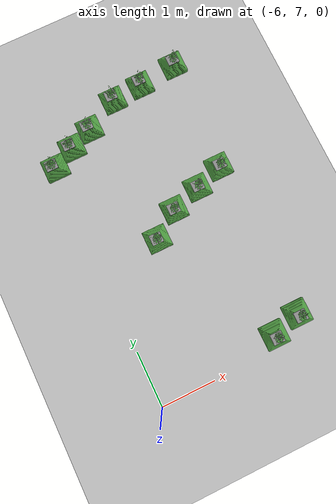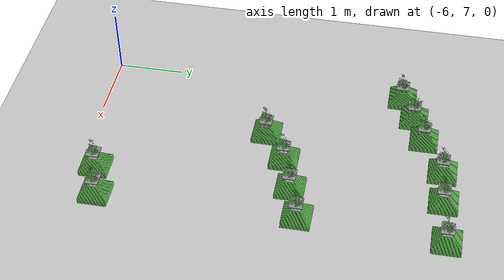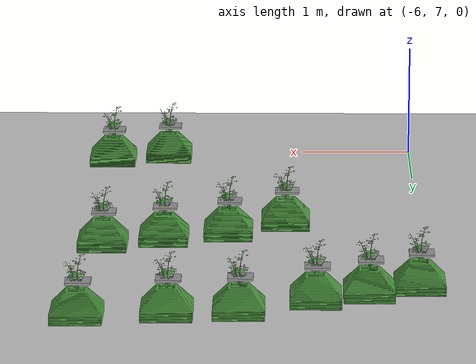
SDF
<sdf version="1.6">
 <world name="default">
  <model name="ground_plane">
   <static>1</static>
   <link name="link">
    <collision name="collision">
     <geometry><plane><normal>0 0 1</normal><size>100 100</size></plane></geometry>
     <surface><friction><ode><mu>100</mu><mu2>50</mu2></ode></friction></surface>
    </collision>
    <visual name="visual">
     <cast_shadows>0</cast_shadows>
     <geometry><plane><normal>0 0 1</normal><size>100 100</size></plane></geometry>
     <material>
      <script><uri>file://media/materials/scripts/gazebo.material</uri><name>Gazebo/Grey</name></script>
     </material>
    </visual>
   </link>
  </model>
  <model name="plant_63">
   <link name="link_0">
    <inertial>
     <mass>1</mass>
     <inertia>
      <ixx>0.0134051</ixx>
      <ixy>0</ixy>
      <ixz>0</ixz>
      <iyy>0.0134051</iyy>
      <iyz>0</iyz>
      <izz>0.0254102</izz>
     </inertia>
    </inertial>
    <gravity>0</gravity>
    <visual name="visual">
     <geometry><mesh><uri>model://square_pot/pot.stl</uri><scale>0.033 0.033 0.02</scale></mesh></geometry>
     <material>
      <lighting>1</lighting>
      <script><uri>file://media/materials/scripts/gazebo.material</uri><name>Gazebo/Grass</name></script>
      <ambient>0.3 0.3 0.3 1</ambient>
      <diffuse>0.7 0.7 0.7 1</diffuse>
      <specular>0.01 0.01 0.01 1</specular>
      <emissive>0 0 0 1</emissive>
      <shader type="vertex"><normal_map>__default__</normal_map></shader>
     </material>
    </visual>
    <collision name="collision">
     <pose>0 0 0.25 0 -0 0</pose>
     <geometry><box><size>0.4 0.4 0.4</size></box></geometry>
     <surface>
      <friction>
       <ode><mu>1</mu><mu2>1</mu2><fdir1>0 0 0</fdir1><slip1>0</slip1><slip2>0</slip2></ode>
       <torsional>
        <coefficient>1</coefficient>
        <patch_radius>0</patch_radius>
        <surface_radius>0</surface_radius>
        <use_patch_radius>1</use_patch_radius>
        <ode><slip>0</slip></ode>
       </torsional>
      </friction>
      <bounce><restitution_coefficient>0</restitution_coefficient><threshold>1e+06</threshold></bounce>
      <contact>
       <collide_without_contact>1</collide_without_contact>
       <collide_without_contact_bitmask>1</collide_without_contact_bitmask>
       <collide_bitmask>1</collide_bitmask>
       <ode>
        <soft_cfm>0</soft_cfm>
        <soft_erp>0.2</soft_erp>
        <kp>1e+13</kp>
        <kd>1</kd>
        <max_vel>0.01</max_vel>
        <min_depth>0</min_depth>
       </ode>
       <bullet>
        <split_impulse>1</split_impulse>
        <split_impulse_penetration_threshold>-0.01</split_impulse_penetration_threshold>
        <soft_cfm>0</soft_cfm>
        <soft_erp>0.2</soft_erp>
        <kp>1e+13</kp>
        <kd>1</kd>
       </bullet>
      </contact>
     </surface>
    </collision>
   </link>
   <link name="link_0_0">
    <pose>-0.011441 -0.008338 0.308474 0 -0 0</pose>
    <inertial>
     <mass>0.000736153</mass>
     <inertia>
      <ixx>2.11165e-06</ixx>
      <ixy>0</ixy>
      <ixz>0</ixz>
      <iyy>2.64382e-06</iyy>
      <iyz>0</iyz>
      <izz>4.70976e-06</izz>
     </inertia>
    </inertial>
    <visual name="visual">
     <geometry><box><size>0.206678 0.18452 0.019291</size></box></geometry>
     <material>
      <lighting>1</lighting>
      <script><uri>file://media/materials/scripts/gazebo.material</uri><name>Gazebo/Grey</name></script>
      <ambient>0.3 0.3 0.3 1</ambient>
      <diffuse>0.7 0.7 0.7 1</diffuse>
      <specular>0.01 0.01 0.01 1</specular>
      <emissive>0 0 0 1</emissive>
     </material>
    </visual>
    <collision name="collision">
     <geometry><box><size>0.206678 0.18452 0.019291</size></box></geometry>
     <surface>
      <friction>
       <ode><mu>1</mu><mu2>1</mu2><fdir1>0 0 0</fdir1><slip1>0</slip1><slip2>0</slip2></ode>
       <torsional>
        <coefficient>1</coefficient>
        <patch_radius>0</patch_radius>
        <surface_radius>0</surface_radius>
        <use_patch_radius>1</use_patch_radius>
        <ode><slip>0</slip></ode>
       </torsional>
      </friction>
      <bounce><restitution_coefficient>0</restitution_coefficient><threshold>1e+06</threshold></bounce>
      <contact>
       <collide_without_contact>0</collide_without_contact>
       <collide_without_contact_bitmask>1</collide_without_contact_bitmask>
       <collide_bitmask>1</collide_bitmask>
       <ode>
        <soft_cfm>0</soft_cfm>
        <soft_erp>0.2</soft_erp>
        <kp>1e+13</kp>
        <kd>1</kd>
        <max_vel>0.01</max_vel>
        <min_depth>0</min_depth>
       </ode>
       <bullet>
        <split_impulse>1</split_impulse>
        <split_impulse_penetration_threshold>-0.01</split_impulse_penetration_threshold>
        <soft_cfm>0</soft_cfm>
        <soft_erp>0.2</soft_erp>
        <kp>1e+13</kp>
        <kd>1</kd>
       </bullet>
      </contact>
     </surface>
    </collision>
   </link>
   <static>1</static>
   <pose>-5.95411 11.5689 0 0 -0 0</pose>
  </model>
  <model name="plant_64">
   <link name="link_0">
    <inertial>
     <mass>1</mass>
     <inertia>
      <ixx>0.0134051</ixx>
      <ixy>0</ixy>
      <ixz>0</ixz>
      <iyy>0.0134051</iyy>
      <iyz>0</iyz>
      <izz>0.0254102</izz>
     </inertia>
    </inertial>
    <gravity>0</gravity>
    <visual name="visual">
     <geometry><mesh><uri>model://square_pot/pot.stl</uri><scale>0.033 0.033 0.02</scale></mesh></geometry>
     <material>
      <lighting>1</lighting>
      <script><uri>file://media/materials/scripts/gazebo.material</uri><name>Gazebo/Grass</name></script>
      <ambient>0.3 0.3 0.3 1</ambient>
      <diffuse>0.7 0.7 0.7 1</diffuse>
      <specular>0.01 0.01 0.01 1</specular>
      <emissive>0 0 0 1</emissive>
      <shader type="vertex"><normal_map>__default__</normal_map></shader>
     </material>
    </visual>
    <collision name="collision">
     <pose>0 0 0.25 0 -0 0</pose>
     <geometry><box><size>0.4 0.4 0.4</size></box></geometry>
     <surface>
      <friction>
       <ode><mu>1</mu><mu2>1</mu2><fdir1>0 0 0</fdir1><slip1>0</slip1><slip2>0</slip2></ode>
       <torsional>
        <coefficient>1</coefficient>
        <patch_radius>0</patch_radius>
        <surface_radius>0</surface_radius>
        <use_patch_radius>1</use_patch_radius>
        <ode><slip>0</slip></ode>
       </torsional>
      </friction>
      <bounce><restitution_coefficient>0</restitution_coefficient><threshold>1e+06</threshold></bounce>
      <contact>
       <collide_without_contact>1</collide_without_contact>
       <collide_without_contact_bitmask>1</collide_without_contact_bitmask>
       <collide_bitmask>1</collide_bitmask>
       <ode>
        <soft_cfm>0</soft_cfm>
        <soft_erp>0.2</soft_erp>
        <kp>1e+13</kp>
        <kd>1</kd>
        <max_vel>0.01</max_vel>
        <min_depth>0</min_depth>
       </ode>
       <bullet>
        <split_impulse>1</split_impulse>
        <split_impulse_penetration_threshold>-0.01</split_impulse_penetration_threshold>
        <soft_cfm>0</soft_cfm>
        <soft_erp>0.2</soft_erp>
        <kp>1e+13</kp>
        <kd>1</kd>
       </bullet>
      </contact>
     </surface>
    </collision>
   </link>
   <link name="link_0_0">
    <pose>-0.011441 -0.008338 0.308474 0 -0 0</pose>
    <inertial>
     <mass>0.000736153</mass>
     <inertia>
      <ixx>2.11165e-06</ixx>
      <ixy>0</ixy>
      <ixz>0</ixz>
      <iyy>2.64382e-06</iyy>
      <iyz>0</iyz>
      <izz>4.70976e-06</izz>
     </inertia>
    </inertial>
    <visual name="visual">
     <geometry><box><size>0.206678 0.18452 0.019291</size></box></geometry>
     <material>
      <lighting>1</lighting>
      <script><uri>file://media/materials/scripts/gazebo.material</uri><name>Gazebo/Grey</name></script>
      <ambient>0.3 0.3 0.3 1</ambient>
      <diffuse>0.7 0.7 0.7 1</diffuse>
      <specular>0.01 0.01 0.01 1</specular>
      <emissive>0 0 0 1</emissive>
     </material>
    </visual>
    <collision name="collision">
     <geometry><box><size>0.206678 0.18452 0.019291</size></box></geometry>
     <surface>
      <friction>
       <ode><mu>1</mu><mu2>1</mu2><fdir1>0 0 0</fdir1><slip1>0</slip1><slip2>0</slip2></ode>
       <torsional>
        <coefficient>1</coefficient>
        <patch_radius>0</patch_radius>
        <surface_radius>0</surface_radius>
        <use_patch_radius>1</use_patch_radius>
        <ode><slip>0</slip></ode>
       </torsional>
      </friction>
      <bounce><restitution_coefficient>0</restitution_coefficient><threshold>1e+06</threshold></bounce>
      <contact>
       <collide_without_contact>0</collide_without_contact>
       <collide_without_contact_bitmask>1</collide_without_contact_bitmask>
       <collide_bitmask>1</collide_bitmask>
       <ode>
        <soft_cfm>0</soft_cfm>
        <soft_erp>0.2</soft_erp>
        <kp>1e+13</kp>
        <kd>1</kd>
        <max_vel>0.01</max_vel>
        <min_depth>0</min_depth>
       </ode>
       <bullet>
        <split_impulse>1</split_impulse>
        <split_impulse_penetration_threshold>-0.01</split_impulse_penetration_threshold>
        <soft_cfm>0</soft_cfm>
        <soft_erp>0.2</soft_erp>
        <kp>1e+13</kp>
        <kd>1</kd>
       </bullet>
      </contact>
     </surface>
    </collision>
   </link>
   <static>1</static>
   <pose>-5.53643 11.7807 0 0 -0 0</pose>
  </model>
  <model name="plant_65">
   <link name="link_0">
    <inertial>
     <mass>1</mass>
     <inertia>
      <ixx>0.0134051</ixx>
      <ixy>0</ixy>
      <ixz>0</ixz>
      <iyy>0.0134051</iyy>
      <iyz>0</iyz>
      <izz>0.0254102</izz>
     </inertia>
    </inertial>
    <gravity>0</gravity>
    <visual name="visual">
     <geometry><mesh><uri>model://square_pot/pot.stl</uri><scale>0.033 0.033 0.02</scale></mesh></geometry>
     <material>
      <lighting>1</lighting>
      <script><uri>file://media/materials/scripts/gazebo.material</uri><name>Gazebo/Grass</name></script>
      <ambient>0.3 0.3 0.3 1</ambient>
      <diffuse>0.7 0.7 0.7 1</diffuse>
      <specular>0.01 0.01 0.01 1</specular>
      <emissive>0 0 0 1</emissive>
      <shader type="vertex"><normal_map>__default__</normal_map></shader>
     </material>
    </visual>
    <collision name="collision">
     <pose>0 0 0.25 0 -0 0</pose>
     <geometry><box><size>0.4 0.4 0.4</size></box></geometry>
     <surface>
      <friction>
       <ode><mu>1</mu><mu2>1</mu2><fdir1>0 0 0</fdir1><slip1>0</slip1><slip2>0</slip2></ode>
       <torsional>
        <coefficient>1</coefficient>
        <patch_radius>0</patch_radius>
        <surface_radius>0</surface_radius>
        <use_patch_radius>1</use_patch_radius>
        <ode><slip>0</slip></ode>
       </torsional>
      </friction>
      <bounce><restitution_coefficient>0</restitution_coefficient><threshold>1e+06</threshold></bounce>
      <contact>
       <collide_without_contact>1</collide_without_contact>
       <collide_without_contact_bitmask>1</collide_without_contact_bitmask>
       <collide_bitmask>1</collide_bitmask>
       <ode>
        <soft_cfm>0</soft_cfm>
        <soft_erp>0.2</soft_erp>
        <kp>1e+13</kp>
        <kd>1</kd>
        <max_vel>0.01</max_vel>
        <min_depth>0</min_depth>
       </ode>
       <bullet>
        <split_impulse>1</split_impulse>
        <split_impulse_penetration_threshold>-0.01</split_impulse_penetration_threshold>
        <soft_cfm>0</soft_cfm>
        <soft_erp>0.2</soft_erp>
        <kp>1e+13</kp>
        <kd>1</kd>
       </bullet>
      </contact>
     </surface>
    </collision>
   </link>
   <link name="link_0_0">
    <pose>-0.011441 -0.008338 0.308474 0 -0 0</pose>
    <inertial>
     <mass>0.000736153</mass>
     <inertia>
      <ixx>2.11165e-06</ixx>
      <ixy>0</ixy>
      <ixz>0</ixz>
      <iyy>2.64382e-06</iyy>
      <iyz>0</iyz>
      <izz>4.70976e-06</izz>
     </inertia>
    </inertial>
    <visual name="visual">
     <geometry><box><size>0.206678 0.18452 0.019291</size></box></geometry>
     <material>
      <lighting>1</lighting>
      <script><uri>file://media/materials/scripts/gazebo.material</uri><name>Gazebo/Grey</name></script>
      <ambient>0.3 0.3 0.3 1</ambient>
      <diffuse>0.7 0.7 0.7 1</diffuse>
      <specular>0.01 0.01 0.01 1</specular>
      <emissive>0 0 0 1</emissive>
     </material>
    </visual>
    <collision name="collision">
     <geometry><box><size>0.206678 0.18452 0.019291</size></box></geometry>
     <surface>
      <friction>
       <ode><mu>1</mu><mu2>1</mu2><fdir1>0 0 0</fdir1><slip1>0</slip1><slip2>0</slip2></ode>
       <torsional>
        <coefficient>1</coefficient>
        <patch_radius>0</patch_radius>
        <surface_radius>0</surface_radius>
        <use_patch_radius>1</use_patch_radius>
        <ode><slip>0</slip></ode>
       </torsional>
      </friction>
      <bounce><restitution_coefficient>0</restitution_coefficient><threshold>1e+06</threshold></bounce>
      <contact>
       <collide_without_contact>0</collide_without_contact>
       <collide_without_contact_bitmask>1</collide_without_contact_bitmask>
       <collide_bitmask>1</collide_bitmask>
       <ode>
        <soft_cfm>0</soft_cfm>
        <soft_erp>0.2</soft_erp>
        <kp>1e+13</kp>
        <kd>1</kd>
        <max_vel>0.01</max_vel>
        <min_depth>0</min_depth>
       </ode>
       <bullet>
        <split_impulse>1</split_impulse>
        <split_impulse_penetration_threshold>-0.01</split_impulse_penetration_threshold>
        <soft_cfm>0</soft_cfm>
        <soft_erp>0.2</soft_erp>
        <kp>1e+13</kp>
        <kd>1</kd>
       </bullet>
      </contact>
     </surface>
    </collision>
   </link>
   <static>1</static>
   <pose>-5.10313 11.9639 0 0 -0 0</pose>
  </model>
  <model name="plant_66">
   <link name="link_0">
    <inertial>
     <mass>1</mass>
     <inertia>
      <ixx>0.0134051</ixx>
      <ixy>0</ixy>
      <ixz>0</ixz>
      <iyy>0.0134051</iyy>
      <iyz>0</iyz>
      <izz>0.0254102</izz>
     </inertia>
    </inertial>
    <gravity>0</gravity>
    <visual name="visual">
     <geometry><mesh><uri>model://square_pot/pot.stl</uri><scale>0.033 0.033 0.02</scale></mesh></geometry>
     <material>
      <lighting>1</lighting>
      <script><uri>file://media/materials/scripts/gazebo.material</uri><name>Gazebo/Grass</name></script>
      <ambient>0.3 0.3 0.3 1</ambient>
      <diffuse>0.7 0.7 0.7 1</diffuse>
      <specular>0.01 0.01 0.01 1</specular>
      <emissive>0 0 0 1</emissive>
      <shader type="vertex"><normal_map>__default__</normal_map></shader>
     </material>
    </visual>
    <collision name="collision">
     <pose>0 0 0.25 0 -0 0</pose>
     <geometry><box><size>0.4 0.4 0.4</size></box></geometry>
     <surface>
      <friction>
       <ode><mu>1</mu><mu2>1</mu2><fdir1>0 0 0</fdir1><slip1>0</slip1><slip2>0</slip2></ode>
       <torsional>
        <coefficient>1</coefficient>
        <patch_radius>0</patch_radius>
        <surface_radius>0</surface_radius>
        <use_patch_radius>1</use_patch_radius>
        <ode><slip>0</slip></ode>
       </torsional>
      </friction>
      <bounce><restitution_coefficient>0</restitution_coefficient><threshold>1e+06</threshold></bounce>
      <contact>
       <collide_without_contact>1</collide_without_contact>
       <collide_without_contact_bitmask>1</collide_without_contact_bitmask>
       <collide_bitmask>1</collide_bitmask>
       <ode>
        <soft_cfm>0</soft_cfm>
        <soft_erp>0.2</soft_erp>
        <kp>1e+13</kp>
        <kd>1</kd>
        <max_vel>0.01</max_vel>
        <min_depth>0</min_depth>
       </ode>
       <bullet>
        <split_impulse>1</split_impulse>
        <split_impulse_penetration_threshold>-0.01</split_impulse_penetration_threshold>
        <soft_cfm>0</soft_cfm>
        <soft_erp>0.2</soft_erp>
        <kp>1e+13</kp>
        <kd>1</kd>
       </bullet>
      </contact>
     </surface>
    </collision>
   </link>
   <link name="link_0_0">
    <pose>-0.011441 -0.008338 0.308474 0 -0 0</pose>
    <inertial>
     <mass>0.000736153</mass>
     <inertia>
      <ixx>2.11165e-06</ixx>
      <ixy>0</ixy>
      <ixz>0</ixz>
      <iyy>2.64382e-06</iyy>
      <iyz>0</iyz>
      <izz>4.70976e-06</izz>
     </inertia>
    </inertial>
    <visual name="visual">
     <geometry><box><size>0.206678 0.18452 0.019291</size></box></geometry>
     <material>
      <lighting>1</lighting>
      <script><uri>file://media/materials/scripts/gazebo.material</uri><name>Gazebo/Grey</name></script>
      <ambient>0.3 0.3 0.3 1</ambient>
      <diffuse>0.7 0.7 0.7 1</diffuse>
      <specular>0.01 0.01 0.01 1</specular>
      <emissive>0 0 0 1</emissive>
     </material>
    </visual>
    <collision name="collision">
     <geometry><box><size>0.206678 0.18452 0.019291</size></box></geometry>
     <surface>
      <friction>
       <ode><mu>1</mu><mu2>1</mu2><fdir1>0 0 0</fdir1><slip1>0</slip1><slip2>0</slip2></ode>
       <torsional>
        <coefficient>1</coefficient>
        <patch_radius>0</patch_radius>
        <surface_radius>0</surface_radius>
        <use_patch_radius>1</use_patch_radius>
        <ode><slip>0</slip></ode>
       </torsional>
      </friction>
      <bounce><restitution_coefficient>0</restitution_coefficient><threshold>1e+06</threshold></bounce>
      <contact>
       <collide_without_contact>0</collide_without_contact>
       <collide_without_contact_bitmask>1</collide_without_contact_bitmask>
       <collide_bitmask>1</collide_bitmask>
       <ode>
        <soft_cfm>0</soft_cfm>
        <soft_erp>0.2</soft_erp>
        <kp>1e+13</kp>
        <kd>1</kd>
        <max_vel>0.01</max_vel>
        <min_depth>0</min_depth>
       </ode>
       <bullet>
        <split_impulse>1</split_impulse>
        <split_impulse_penetration_threshold>-0.01</split_impulse_penetration_threshold>
        <soft_cfm>0</soft_cfm>
        <soft_erp>0.2</soft_erp>
        <kp>1e+13</kp>
        <kd>1</kd>
       </bullet>
      </contact>
     </surface>
    </collision>
   </link>
   <static>1</static>
   <pose>-4.48695 12.2803 0 0 -0 0</pose>
  </model>
  <model name="plant_67">
   <link name="link_0">
    <inertial>
     <mass>1</mass>
     <inertia>
      <ixx>0.0134051</ixx>
      <ixy>0</ixy>
      <ixz>0</ixz>
      <iyy>0.0134051</iyy>
      <iyz>0</iyz>
      <izz>0.0254102</izz>
     </inertia>
    </inertial>
    <gravity>0</gravity>
    <visual name="visual">
     <geometry><mesh><uri>model://square_pot/pot.stl</uri><scale>0.033 0.033 0.02</scale></mesh></geometry>
     <material>
      <lighting>1</lighting>
      <script><uri>file://media/materials/scripts/gazebo.material</uri><name>Gazebo/Grass</name></script>
      <ambient>0.3 0.3 0.3 1</ambient>
      <diffuse>0.7 0.7 0.7 1</diffuse>
      <specular>0.01 0.01 0.01 1</specular>
      <emissive>0 0 0 1</emissive>
      <shader type="vertex"><normal_map>__default__</normal_map></shader>
     </material>
    </visual>
    <collision name="collision">
     <pose>0 0 0.25 0 -0 0</pose>
     <geometry><box><size>0.4 0.4 0.4</size></box></geometry>
     <surface>
      <friction>
       <ode><mu>1</mu><mu2>1</mu2><fdir1>0 0 0</fdir1><slip1>0</slip1><slip2>0</slip2></ode>
       <torsional>
        <coefficient>1</coefficient>
        <patch_radius>0</patch_radius>
        <surface_radius>0</surface_radius>
        <use_patch_radius>1</use_patch_radius>
        <ode><slip>0</slip></ode>
       </torsional>
      </friction>
      <bounce><restitution_coefficient>0</restitution_coefficient><threshold>1e+06</threshold></bounce>
      <contact>
       <collide_without_contact>1</collide_without_contact>
       <collide_without_contact_bitmask>1</collide_without_contact_bitmask>
       <collide_bitmask>1</collide_bitmask>
       <ode>
        <soft_cfm>0</soft_cfm>
        <soft_erp>0.2</soft_erp>
        <kp>1e+13</kp>
        <kd>1</kd>
        <max_vel>0.01</max_vel>
        <min_depth>0</min_depth>
       </ode>
       <bullet>
        <split_impulse>1</split_impulse>
        <split_impulse_penetration_threshold>-0.01</split_impulse_penetration_threshold>
        <soft_cfm>0</soft_cfm>
        <soft_erp>0.2</soft_erp>
        <kp>1e+13</kp>
        <kd>1</kd>
       </bullet>
      </contact>
     </surface>
    </collision>
   </link>
   <link name="link_0_0">
    <pose>-0.011441 -0.008338 0.308474 0 -0 0</pose>
    <inertial>
     <mass>0.000736153</mass>
     <inertia>
      <ixx>2.11165e-06</ixx>
      <ixy>0</ixy>
      <ixz>0</ixz>
      <iyy>2.64382e-06</iyy>
      <iyz>0</iyz>
      <izz>4.70976e-06</izz>
     </inertia>
    </inertial>
    <visual name="visual">
     <geometry><box><size>0.206678 0.18452 0.019291</size></box></geometry>
     <material>
      <lighting>1</lighting>
      <script><uri>file://media/materials/scripts/gazebo.material</uri><name>Gazebo/Grey</name></script>
      <ambient>0.3 0.3 0.3 1</ambient>
      <diffuse>0.7 0.7 0.7 1</diffuse>
      <specular>0.01 0.01 0.01 1</specular>
      <emissive>0 0 0 1</emissive>
     </material>
    </visual>
    <collision name="collision">
     <geometry><box><size>0.206678 0.18452 0.019291</size></box></geometry>
     <surface>
      <friction>
       <ode><mu>1</mu><mu2>1</mu2><fdir1>0 0 0</fdir1><slip1>0</slip1><slip2>0</slip2></ode>
       <torsional>
        <coefficient>1</coefficient>
        <patch_radius>0</patch_radius>
        <surface_radius>0</surface_radius>
        <use_patch_radius>1</use_patch_radius>
        <ode><slip>0</slip></ode>
       </torsional>
      </friction>
      <bounce><restitution_coefficient>0</restitution_coefficient><threshold>1e+06</threshold></bounce>
      <contact>
       <collide_without_contact>0</collide_without_contact>
       <collide_without_contact_bitmask>1</collide_without_contact_bitmask>
       <collide_bitmask>1</collide_bitmask>
       <ode>
        <soft_cfm>0</soft_cfm>
        <soft_erp>0.2</soft_erp>
        <kp>1e+13</kp>
        <kd>1</kd>
        <max_vel>0.01</max_vel>
        <min_depth>0</min_depth>
       </ode>
       <bullet>
        <split_impulse>1</split_impulse>
        <split_impulse_penetration_threshold>-0.01</split_impulse_penetration_threshold>
        <soft_cfm>0</soft_cfm>
        <soft_erp>0.2</soft_erp>
        <kp>1e+13</kp>
        <kd>1</kd>
       </bullet>
      </contact>
     </surface>
    </collision>
   </link>
   <static>1</static>
   <pose>-3.9136 12.33 0 0 -0 0</pose>
  </model>
  <model name="plant_68">
   <link name="link_0">
    <inertial>
     <mass>1</mass>
     <inertia>
      <ixx>0.0134051</ixx>
      <ixy>0</ixy>
      <ixz>0</ixz>
      <iyy>0.0134051</iyy>
      <iyz>0</iyz>
      <izz>0.0254102</izz>
     </inertia>
    </inertial>
    <gravity>0</gravity>
    <visual name="visual">
     <geometry><mesh><uri>model://square_pot/pot.stl</uri><scale>0.033 0.033 0.02</scale></mesh></geometry>
     <material>
      <lighting>1</lighting>
      <script><uri>file://media/materials/scripts/gazebo.material</uri><name>Gazebo/Grass</name></script>
      <ambient>0.3 0.3 0.3 1</ambient>
      <diffuse>0.7 0.7 0.7 1</diffuse>
      <specular>0.01 0.01 0.01 1</specular>
      <emissive>0 0 0 1</emissive>
      <shader type="vertex"><normal_map>__default__</normal_map></shader>
     </material>
    </visual>
    <collision name="collision">
     <pose>0 0 0.25 0 -0 0</pose>
     <geometry><box><size>0.4 0.4 0.4</size></box></geometry>
     <surface>
      <friction>
       <ode><mu>1</mu><mu2>1</mu2><fdir1>0 0 0</fdir1><slip1>0</slip1><slip2>0</slip2></ode>
       <torsional>
        <coefficient>1</coefficient>
        <patch_radius>0</patch_radius>
        <surface_radius>0</surface_radius>
        <use_patch_radius>1</use_patch_radius>
        <ode><slip>0</slip></ode>
       </torsional>
      </friction>
      <bounce><restitution_coefficient>0</restitution_coefficient><threshold>1e+06</threshold></bounce>
      <contact>
       <collide_without_contact>1</collide_without_contact>
       <collide_without_contact_bitmask>1</collide_without_contact_bitmask>
       <collide_bitmask>1</collide_bitmask>
       <ode>
        <soft_cfm>0</soft_cfm>
        <soft_erp>0.2</soft_erp>
        <kp>1e+13</kp>
        <kd>1</kd>
        <max_vel>0.01</max_vel>
        <min_depth>0</min_depth>
       </ode>
       <bullet>
        <split_impulse>1</split_impulse>
        <split_impulse_penetration_threshold>-0.01</split_impulse_penetration_threshold>
        <soft_cfm>0</soft_cfm>
        <soft_erp>0.2</soft_erp>
        <kp>1e+13</kp>
        <kd>1</kd>
       </bullet>
      </contact>
     </surface>
    </collision>
   </link>
   <link name="link_0_0">
    <pose>-0.011441 -0.008338 0.308474 0 -0 0</pose>
    <inertial>
     <mass>0.000736153</mass>
     <inertia>
      <ixx>2.11165e-06</ixx>
      <ixy>0</ixy>
      <ixz>0</ixz>
      <iyy>2.64382e-06</iyy>
      <iyz>0</iyz>
      <izz>4.70976e-06</izz>
     </inertia>
    </inertial>
    <visual name="visual">
     <geometry><box><size>0.206678 0.18452 0.019291</size></box></geometry>
     <material>
      <lighting>1</lighting>
      <script><uri>file://media/materials/scripts/gazebo.material</uri><name>Gazebo/Grey</name></script>
      <ambient>0.3 0.3 0.3 1</ambient>
      <diffuse>0.7 0.7 0.7 1</diffuse>
      <specular>0.01 0.01 0.01 1</specular>
      <emissive>0 0 0 1</emissive>
     </material>
    </visual>
    <collision name="collision">
     <geometry><box><size>0.206678 0.18452 0.019291</size></box></geometry>
     <surface>
      <friction>
       <ode><mu>1</mu><mu2>1</mu2><fdir1>0 0 0</fdir1><slip1>0</slip1><slip2>0</slip2></ode>
       <torsional>
        <coefficient>1</coefficient>
        <patch_radius>0</patch_radius>
        <surface_radius>0</surface_radius>
        <use_patch_radius>1</use_patch_radius>
        <ode><slip>0</slip></ode>
       </torsional>
      </friction>
      <bounce><restitution_coefficient>0</restitution_coefficient><threshold>1e+06</threshold></bounce>
      <contact>
       <collide_without_contact>0</collide_without_contact>
       <collide_without_contact_bitmask>1</collide_without_contact_bitmask>
       <collide_bitmask>1</collide_bitmask>
       <ode>
        <soft_cfm>0</soft_cfm>
        <soft_erp>0.2</soft_erp>
        <kp>1e+13</kp>
        <kd>1</kd>
        <max_vel>0.01</max_vel>
        <min_depth>0</min_depth>
       </ode>
       <bullet>
        <split_impulse>1</split_impulse>
        <split_impulse_penetration_threshold>-0.01</split_impulse_penetration_threshold>
        <soft_cfm>0</soft_cfm>
        <soft_erp>0.2</soft_erp>
        <kp>1e+13</kp>
        <kd>1</kd>
       </bullet>
      </contact>
     </surface>
    </collision>
   </link>
   <static>1</static>
   <pose>-3.19972 12.4168 0 0 -0 0</pose>
  </model>
  <model name="plant_72">
   <link name="link_0">
    <inertial>
     <mass>1</mass>
     <inertia>
      <ixx>0.0134051</ixx>
      <ixy>0</ixy>
      <ixz>0</ixz>
      <iyy>0.0134051</iyy>
      <iyz>0</iyz>
      <izz>0.0254102</izz>
     </inertia>
    </inertial>
    <gravity>0</gravity>
    <visual name="visual">
     <geometry><mesh><uri>model://square_pot/pot.stl</uri><scale>0.033 0.033 0.02</scale></mesh></geometry>
     <material>
      <lighting>1</lighting>
      <script><uri>file://media/materials/scripts/gazebo.material</uri><name>Gazebo/Grass</name></script>
      <ambient>0.3 0.3 0.3 1</ambient>
      <diffuse>0.7 0.7 0.7 1</diffuse>
      <specular>0.01 0.01 0.01 1</specular>
      <emissive>0 0 0 1</emissive>
      <shader type="vertex"><normal_map>__default__</normal_map></shader>
     </material>
    </visual>
    <collision name="collision">
     <pose>0 0 0.25 0 -0 0</pose>
     <geometry><box><size>0.4 0.4 0.4</size></box></geometry>
     <surface>
      <friction>
       <ode><mu>1</mu><mu2>1</mu2><fdir1>0 0 0</fdir1><slip1>0</slip1><slip2>0</slip2></ode>
       <torsional>
        <coefficient>1</coefficient>
        <patch_radius>0</patch_radius>
        <surface_radius>0</surface_radius>
        <use_patch_radius>1</use_patch_radius>
        <ode><slip>0</slip></ode>
       </torsional>
      </friction>
      <bounce><restitution_coefficient>0</restitution_coefficient><threshold>1e+06</threshold></bounce>
      <contact>
       <collide_without_contact>1</collide_without_contact>
       <collide_without_contact_bitmask>1</collide_without_contact_bitmask>
       <collide_bitmask>1</collide_bitmask>
       <ode>
        <soft_cfm>0</soft_cfm>
        <soft_erp>0.2</soft_erp>
        <kp>1e+13</kp>
        <kd>1</kd>
        <max_vel>0.01</max_vel>
        <min_depth>0</min_depth>
       </ode>
       <bullet>
        <split_impulse>1</split_impulse>
        <split_impulse_penetration_threshold>-0.01</split_impulse_penetration_threshold>
        <soft_cfm>0</soft_cfm>
        <soft_erp>0.2</soft_erp>
        <kp>1e+13</kp>
        <kd>1</kd>
       </bullet>
      </contact>
     </surface>
    </collision>
   </link>
   <link name="link_0_0">
    <pose>-0.011441 -0.008338 0.308474 0 -0 0</pose>
    <inertial>
     <mass>0.000736153</mass>
     <inertia>
      <ixx>2.11165e-06</ixx>
      <ixy>0</ixy>
      <ixz>0</ixz>
      <iyy>2.64382e-06</iyy>
      <iyz>0</iyz>
      <izz>4.70976e-06</izz>
     </inertia>
    </inertial>
    <visual name="visual">
     <geometry><box><size>0.206678 0.18452 0.019291</size></box></geometry>
     <material>
      <lighting>1</lighting>
      <script><uri>file://media/materials/scripts/gazebo.material</uri><name>Gazebo/Grey</name></script>
      <ambient>0.3 0.3 0.3 1</ambient>
      <diffuse>0.7 0.7 0.7 1</diffuse>
      <specular>0.01 0.01 0.01 1</specular>
      <emissive>0 0 0 1</emissive>
     </material>
    </visual>
    <collision name="collision">
     <geometry><box><size>0.206678 0.18452 0.019291</size></box></geometry>
     <surface>
      <friction>
       <ode><mu>1</mu><mu2>1</mu2><fdir1>0 0 0</fdir1><slip1>0</slip1><slip2>0</slip2></ode>
       <torsional>
        <coefficient>1</coefficient>
        <patch_radius>0</patch_radius>
        <surface_radius>0</surface_radius>
        <use_patch_radius>1</use_patch_radius>
        <ode><slip>0</slip></ode>
       </torsional>
      </friction>
      <bounce><restitution_coefficient>0</restitution_coefficient><threshold>1e+06</threshold></bounce>
      <contact>
       <collide_without_contact>0</collide_without_contact>
       <collide_without_contact_bitmask>1</collide_without_contact_bitmask>
       <collide_bitmask>1</collide_bitmask>
       <ode>
        <soft_cfm>0</soft_cfm>
        <soft_erp>0.2</soft_erp>
        <kp>1e+13</kp>
        <kd>1</kd>
        <max_vel>0.01</max_vel>
        <min_depth>0</min_depth>
       </ode>
       <bullet>
        <split_impulse>1</split_impulse>
        <split_impulse_penetration_threshold>-0.01</split_impulse_penetration_threshold>
        <soft_cfm>0</soft_cfm>
        <soft_erp>0.2</soft_erp>
        <kp>1e+13</kp>
        <kd>1</kd>
       </bullet>
      </contact>
     </surface>
    </collision>
   </link>
   <static>1</static>
   <pose>-4.84898 9.61201 0 0 -0 0</pose>
  </model>
  <model name="plant_73">
   <link name="link_0">
    <inertial>
     <mass>1</mass>
     <inertia>
      <ixx>0.0134051</ixx>
      <ixy>0</ixy>
      <ixz>0</ixz>
      <iyy>0.0134051</iyy>
      <iyz>0</iyz>
      <izz>0.0254102</izz>
     </inertia>
    </inertial>
    <gravity>0</gravity>
    <visual name="visual">
     <geometry><mesh><uri>model://square_pot/pot.stl</uri><scale>0.033 0.033 0.02</scale></mesh></geometry>
     <material>
      <lighting>1</lighting>
      <script><uri>file://media/materials/scripts/gazebo.material</uri><name>Gazebo/Grass</name></script>
      <ambient>0.3 0.3 0.3 1</ambient>
      <diffuse>0.7 0.7 0.7 1</diffuse>
      <specular>0.01 0.01 0.01 1</specular>
      <emissive>0 0 0 1</emissive>
      <shader type="vertex"><normal_map>__default__</normal_map></shader>
     </material>
    </visual>
    <collision name="collision">
     <pose>0 0 0.25 0 -0 0</pose>
     <geometry><box><size>0.4 0.4 0.4</size></box></geometry>
     <surface>
      <friction>
       <ode><mu>1</mu><mu2>1</mu2><fdir1>0 0 0</fdir1><slip1>0</slip1><slip2>0</slip2></ode>
       <torsional>
        <coefficient>1</coefficient>
        <patch_radius>0</patch_radius>
        <surface_radius>0</surface_radius>
        <use_patch_radius>1</use_patch_radius>
        <ode><slip>0</slip></ode>
       </torsional>
      </friction>
      <bounce><restitution_coefficient>0</restitution_coefficient><threshold>1e+06</threshold></bounce>
      <contact>
       <collide_without_contact>1</collide_without_contact>
       <collide_without_contact_bitmask>1</collide_without_contact_bitmask>
       <collide_bitmask>1</collide_bitmask>
       <ode>
        <soft_cfm>0</soft_cfm>
        <soft_erp>0.2</soft_erp>
        <kp>1e+13</kp>
        <kd>1</kd>
        <max_vel>0.01</max_vel>
        <min_depth>0</min_depth>
       </ode>
       <bullet>
        <split_impulse>1</split_impulse>
        <split_impulse_penetration_threshold>-0.01</split_impulse_penetration_threshold>
        <soft_cfm>0</soft_cfm>
        <soft_erp>0.2</soft_erp>
        <kp>1e+13</kp>
        <kd>1</kd>
       </bullet>
      </contact>
     </surface>
    </collision>
   </link>
   <link name="link_0_0">
    <pose>-0.011441 -0.008338 0.308474 0 -0 0</pose>
    <inertial>
     <mass>0.000736153</mass>
     <inertia>
      <ixx>2.11165e-06</ixx>
      <ixy>0</ixy>
      <ixz>0</ixz>
      <iyy>2.64382e-06</iyy>
      <iyz>0</iyz>
      <izz>4.70976e-06</izz>
     </inertia>
    </inertial>
    <visual name="visual">
     <geometry><box><size>0.206678 0.18452 0.019291</size></box></geometry>
     <material>
      <lighting>1</lighting>
      <script><uri>file://media/materials/scripts/gazebo.material</uri><name>Gazebo/Grey</name></script>
      <ambient>0.3 0.3 0.3 1</ambient>
      <diffuse>0.7 0.7 0.7 1</diffuse>
      <specular>0.01 0.01 0.01 1</specular>
      <emissive>0 0 0 1</emissive>
     </material>
    </visual>
    <collision name="collision">
     <geometry><box><size>0.206678 0.18452 0.019291</size></box></geometry>
     <surface>
      <friction>
       <ode><mu>1</mu><mu2>1</mu2><fdir1>0 0 0</fdir1><slip1>0</slip1><slip2>0</slip2></ode>
       <torsional>
        <coefficient>1</coefficient>
        <patch_radius>0</patch_radius>
        <surface_radius>0</surface_radius>
        <use_patch_radius>1</use_patch_radius>
        <ode><slip>0</slip></ode>
       </torsional>
      </friction>
      <bounce><restitution_coefficient>0</restitution_coefficient><threshold>1e+06</threshold></bounce>
      <contact>
       <collide_without_contact>0</collide_without_contact>
       <collide_without_contact_bitmask>1</collide_without_contact_bitmask>
       <collide_bitmask>1</collide_bitmask>
       <ode>
        <soft_cfm>0</soft_cfm>
        <soft_erp>0.2</soft_erp>
        <kp>1e+13</kp>
        <kd>1</kd>
        <max_vel>0.01</max_vel>
        <min_depth>0</min_depth>
       </ode>
       <bullet>
        <split_impulse>1</split_impulse>
        <split_impulse_penetration_threshold>-0.01</split_impulse_penetration_threshold>
        <soft_cfm>0</soft_cfm>
        <soft_erp>0.2</soft_erp>
        <kp>1e+13</kp>
        <kd>1</kd>
       </bullet>
      </contact>
     </surface>
    </collision>
   </link>
   <static>1</static>
   <pose>-4.35606 9.95678 0 0 -0 0</pose>
  </model>
  <model name="plant_74">
   <link name="link_0">
    <inertial>
     <mass>1</mass>
     <inertia>
      <ixx>0.0134051</ixx>
      <ixy>0</ixy>
      <ixz>0</ixz>
      <iyy>0.0134051</iyy>
      <iyz>0</iyz>
      <izz>0.0254102</izz>
     </inertia>
    </inertial>
    <gravity>0</gravity>
    <visual name="visual">
     <geometry><mesh><uri>model://square_pot/pot.stl</uri><scale>0.033 0.033 0.02</scale></mesh></geometry>
     <material>
      <lighting>1</lighting>
      <script><uri>file://media/materials/scripts/gazebo.material</uri><name>Gazebo/Grass</name></script>
      <ambient>0.3 0.3 0.3 1</ambient>
      <diffuse>0.7 0.7 0.7 1</diffuse>
      <specular>0.01 0.01 0.01 1</specular>
      <emissive>0 0 0 1</emissive>
      <shader type="vertex"><normal_map>__default__</normal_map></shader>
     </material>
    </visual>
    <collision name="collision">
     <pose>0 0 0.25 0 -0 0</pose>
     <geometry><box><size>0.4 0.4 0.4</size></box></geometry>
     <surface>
      <friction>
       <ode><mu>1</mu><mu2>1</mu2><fdir1>0 0 0</fdir1><slip1>0</slip1><slip2>0</slip2></ode>
       <torsional>
        <coefficient>1</coefficient>
        <patch_radius>0</patch_radius>
        <surface_radius>0</surface_radius>
        <use_patch_radius>1</use_patch_radius>
        <ode><slip>0</slip></ode>
       </torsional>
      </friction>
      <bounce><restitution_coefficient>0</restitution_coefficient><threshold>1e+06</threshold></bounce>
      <contact>
       <collide_without_contact>1</collide_without_contact>
       <collide_without_contact_bitmask>1</collide_without_contact_bitmask>
       <collide_bitmask>1</collide_bitmask>
       <ode>
        <soft_cfm>0</soft_cfm>
        <soft_erp>0.2</soft_erp>
        <kp>1e+13</kp>
        <kd>1</kd>
        <max_vel>0.01</max_vel>
        <min_depth>0</min_depth>
       </ode>
       <bullet>
        <split_impulse>1</split_impulse>
        <split_impulse_penetration_threshold>-0.01</split_impulse_penetration_threshold>
        <soft_cfm>0</soft_cfm>
        <soft_erp>0.2</soft_erp>
        <kp>1e+13</kp>
        <kd>1</kd>
       </bullet>
      </contact>
     </surface>
    </collision>
   </link>
   <link name="link_0_0">
    <pose>-0.011441 -0.008338 0.308474 0 -0 0</pose>
    <inertial>
     <mass>0.000736153</mass>
     <inertia>
      <ixx>2.11165e-06</ixx>
      <ixy>0</ixy>
      <ixz>0</ixz>
      <iyy>2.64382e-06</iyy>
      <iyz>0</iyz>
      <izz>4.70976e-06</izz>
     </inertia>
    </inertial>
    <visual name="visual">
     <geometry><box><size>0.206678 0.18452 0.019291</size></box></geometry>
     <material>
      <lighting>1</lighting>
      <script><uri>file://media/materials/scripts/gazebo.material</uri><name>Gazebo/Grey</name></script>
      <ambient>0.3 0.3 0.3 1</ambient>
      <diffuse>0.7 0.7 0.7 1</diffuse>
      <specular>0.01 0.01 0.01 1</specular>
      <emissive>0 0 0 1</emissive>
     </material>
    </visual>
    <collision name="collision">
     <geometry><box><size>0.206678 0.18452 0.019291</size></box></geometry>
     <surface>
      <friction>
       <ode><mu>1</mu><mu2>1</mu2><fdir1>0 0 0</fdir1><slip1>0</slip1><slip2>0</slip2></ode>
       <torsional>
        <coefficient>1</coefficient>
        <patch_radius>0</patch_radius>
        <surface_radius>0</surface_radius>
        <use_patch_radius>1</use_patch_radius>
        <ode><slip>0</slip></ode>
       </torsional>
      </friction>
      <bounce><restitution_coefficient>0</restitution_coefficient><threshold>1e+06</threshold></bounce>
      <contact>
       <collide_without_contact>0</collide_without_contact>
       <collide_without_contact_bitmask>1</collide_without_contact_bitmask>
       <collide_bitmask>1</collide_bitmask>
       <ode>
        <soft_cfm>0</soft_cfm>
        <soft_erp>0.2</soft_erp>
        <kp>1e+13</kp>
        <kd>1</kd>
        <max_vel>0.01</max_vel>
        <min_depth>0</min_depth>
       </ode>
       <bullet>
        <split_impulse>1</split_impulse>
        <split_impulse_penetration_threshold>-0.01</split_impulse_penetration_threshold>
        <soft_cfm>0</soft_cfm>
        <soft_erp>0.2</soft_erp>
        <kp>1e+13</kp>
        <kd>1</kd>
       </bullet>
      </contact>
     </surface>
    </collision>
   </link>
   <static>1</static>
   <pose>-3.80601 10.1385 0 0 -0 0</pose>
  </model>
  <model name="plant_75">
   <link name="link_0">
    <inertial>
     <mass>1</mass>
     <inertia>
      <ixx>0.0134051</ixx>
      <ixy>0</ixy>
      <ixz>0</ixz>
      <iyy>0.0134051</iyy>
      <iyz>0</iyz>
      <izz>0.0254102</izz>
     </inertia>
    </inertial>
    <gravity>0</gravity>
    <visual name="visual">
     <geometry><mesh><uri>model://square_pot/pot.stl</uri><scale>0.033 0.033 0.02</scale></mesh></geometry>
     <material>
      <lighting>1</lighting>
      <script><uri>file://media/materials/scripts/gazebo.material</uri><name>Gazebo/Grass</name></script>
      <ambient>0.3 0.3 0.3 1</ambient>
      <diffuse>0.7 0.7 0.7 1</diffuse>
      <specular>0.01 0.01 0.01 1</specular>
      <emissive>0 0 0 1</emissive>
      <shader type="vertex"><normal_map>__default__</normal_map></shader>
     </material>
    </visual>
    <collision name="collision">
     <pose>0 0 0.25 0 -0 0</pose>
     <geometry><box><size>0.4 0.4 0.4</size></box></geometry>
     <surface>
      <friction>
       <ode><mu>1</mu><mu2>1</mu2><fdir1>0 0 0</fdir1><slip1>0</slip1><slip2>0</slip2></ode>
       <torsional>
        <coefficient>1</coefficient>
        <patch_radius>0</patch_radius>
        <surface_radius>0</surface_radius>
        <use_patch_radius>1</use_patch_radius>
        <ode><slip>0</slip></ode>
       </torsional>
      </friction>
      <bounce><restitution_coefficient>0</restitution_coefficient><threshold>1e+06</threshold></bounce>
      <contact>
       <collide_without_contact>1</collide_without_contact>
       <collide_without_contact_bitmask>1</collide_without_contact_bitmask>
       <collide_bitmask>1</collide_bitmask>
       <ode>
        <soft_cfm>0</soft_cfm>
        <soft_erp>0.2</soft_erp>
        <kp>1e+13</kp>
        <kd>1</kd>
        <max_vel>0.01</max_vel>
        <min_depth>0</min_depth>
       </ode>
       <bullet>
        <split_impulse>1</split_impulse>
        <split_impulse_penetration_threshold>-0.01</split_impulse_penetration_threshold>
        <soft_cfm>0</soft_cfm>
        <soft_erp>0.2</soft_erp>
        <kp>1e+13</kp>
        <kd>1</kd>
       </bullet>
      </contact>
     </surface>
    </collision>
   </link>
   <link name="link_0_0">
    <pose>-0.011441 -0.008338 0.308474 0 -0 0</pose>
    <inertial>
     <mass>0.000736153</mass>
     <inertia>
      <ixx>2.11165e-06</ixx>
      <ixy>0</ixy>
      <ixz>0</ixz>
      <iyy>2.64382e-06</iyy>
      <iyz>0</iyz>
      <izz>4.70976e-06</izz>
     </inertia>
    </inertial>
    <visual name="visual">
     <geometry><box><size>0.206678 0.18452 0.019291</size></box></geometry>
     <material>
      <lighting>1</lighting>
      <script><uri>file://media/materials/scripts/gazebo.material</uri><name>Gazebo/Grey</name></script>
      <ambient>0.3 0.3 0.3 1</ambient>
      <diffuse>0.7 0.7 0.7 1</diffuse>
      <specular>0.01 0.01 0.01 1</specular>
      <emissive>0 0 0 1</emissive>
     </material>
    </visual>
    <collision name="collision">
     <geometry><box><size>0.206678 0.18452 0.019291</size></box></geometry>
     <surface>
      <friction>
       <ode><mu>1</mu><mu2>1</mu2><fdir1>0 0 0</fdir1><slip1>0</slip1><slip2>0</slip2></ode>
       <torsional>
        <coefficient>1</coefficient>
        <patch_radius>0</patch_radius>
        <surface_radius>0</surface_radius>
        <use_patch_radius>1</use_patch_radius>
        <ode><slip>0</slip></ode>
       </torsional>
      </friction>
      <bounce><restitution_coefficient>0</restitution_coefficient><threshold>1e+06</threshold></bounce>
      <contact>
       <collide_without_contact>0</collide_without_contact>
       <collide_without_contact_bitmask>1</collide_without_contact_bitmask>
       <collide_bitmask>1</collide_bitmask>
       <ode>
        <soft_cfm>0</soft_cfm>
        <soft_erp>0.2</soft_erp>
        <kp>1e+13</kp>
        <kd>1</kd>
        <max_vel>0.01</max_vel>
        <min_depth>0</min_depth>
       </ode>
       <bullet>
        <split_impulse>1</split_impulse>
        <split_impulse_penetration_threshold>-0.01</split_impulse_penetration_threshold>
        <soft_cfm>0</soft_cfm>
        <soft_erp>0.2</soft_erp>
        <kp>1e+13</kp>
        <kd>1</kd>
       </bullet>
      </contact>
     </surface>
    </collision>
   </link>
   <static>1</static>
   <pose>-3.2913 10.3161 0 0 -0 0</pose>
  </model>
  <model name="plant_79">
   <link name="link_0">
    <inertial>
     <mass>1</mass>
     <inertia>
      <ixx>0.0134051</ixx>
      <ixy>0</ixy>
      <ixz>0</ixz>
      <iyy>0.0134051</iyy>
      <iyz>0</iyz>
      <izz>0.0254102</izz>
     </inertia>
    </inertial>
    <gravity>0</gravity>
    <visual name="visual">
     <geometry><mesh><uri>model://square_pot/pot.stl</uri><scale>0.033 0.033 0.02</scale></mesh></geometry>
     <material>
      <lighting>1</lighting>
      <script><uri>file://media/materials/scripts/gazebo.material</uri><name>Gazebo/Grass</name></script>
      <ambient>0.3 0.3 0.3 1</ambient>
      <diffuse>0.7 0.7 0.7 1</diffuse>
      <specular>0.01 0.01 0.01 1</specular>
      <emissive>0 0 0 1</emissive>
      <shader type="vertex"><normal_map>__default__</normal_map></shader>
     </material>
    </visual>
    <collision name="collision">
     <pose>0 0 0.25 0 -0 0</pose>
     <geometry><box><size>0.4 0.4 0.4</size></box></geometry>
     <surface>
      <friction>
       <ode><mu>1</mu><mu2>1</mu2><fdir1>0 0 0</fdir1><slip1>0</slip1><slip2>0</slip2></ode>
       <torsional>
        <coefficient>1</coefficient>
        <patch_radius>0</patch_radius>
        <surface_radius>0</surface_radius>
        <use_patch_radius>1</use_patch_radius>
        <ode><slip>0</slip></ode>
       </torsional>
      </friction>
      <bounce><restitution_coefficient>0</restitution_coefficient><threshold>1e+06</threshold></bounce>
      <contact>
       <collide_without_contact>1</collide_without_contact>
       <collide_without_contact_bitmask>1</collide_without_contact_bitmask>
       <collide_bitmask>1</collide_bitmask>
       <ode>
        <soft_cfm>0</soft_cfm>
        <soft_erp>0.2</soft_erp>
        <kp>1e+13</kp>
        <kd>1</kd>
        <max_vel>0.01</max_vel>
        <min_depth>0</min_depth>
       </ode>
       <bullet>
        <split_impulse>1</split_impulse>
        <split_impulse_penetration_threshold>-0.01</split_impulse_penetration_threshold>
        <soft_cfm>0</soft_cfm>
        <soft_erp>0.2</soft_erp>
        <kp>1e+13</kp>
        <kd>1</kd>
       </bullet>
      </contact>
     </surface>
    </collision>
   </link>
   <link name="link_0_0">
    <pose>-0.011441 -0.008338 0.308474 0 -0 0</pose>
    <inertial>
     <mass>0.000736153</mass>
     <inertia>
      <ixx>2.11165e-06</ixx>
      <ixy>0</ixy>
      <ixz>0</ixz>
      <iyy>2.64382e-06</iyy>
      <iyz>0</iyz>
      <izz>4.70976e-06</izz>
     </inertia>
    </inertial>
    <visual name="visual">
     <geometry><box><size>0.206678 0.18452 0.019291</size></box></geometry>
     <material>
      <lighting>1</lighting>
      <script><uri>file://media/materials/scripts/gazebo.material</uri><name>Gazebo/Grey</name></script>
      <ambient>0.3 0.3 0.3 1</ambient>
      <diffuse>0.7 0.7 0.7 1</diffuse>
      <specular>0.01 0.01 0.01 1</specular>
      <emissive>0 0 0 1</emissive>
     </material>
    </visual>
    <collision name="collision">
     <geometry><box><size>0.206678 0.18452 0.019291</size></box></geometry>
     <surface>
      <friction>
       <ode><mu>1</mu><mu2>1</mu2><fdir1>0 0 0</fdir1><slip1>0</slip1><slip2>0</slip2></ode>
       <torsional>
        <coefficient>1</coefficient>
        <patch_radius>0</patch_radius>
        <surface_radius>0</surface_radius>
        <use_patch_radius>1</use_patch_radius>
        <ode><slip>0</slip></ode>
       </torsional>
      </friction>
      <bounce><restitution_coefficient>0</restitution_coefficient><threshold>1e+06</threshold></bounce>
      <contact>
       <collide_without_contact>0</collide_without_contact>
       <collide_without_contact_bitmask>1</collide_without_contact_bitmask>
       <collide_bitmask>1</collide_bitmask>
       <ode>
        <soft_cfm>0</soft_cfm>
        <soft_erp>0.2</soft_erp>
        <kp>1e+13</kp>
        <kd>1</kd>
        <max_vel>0.01</max_vel>
        <min_depth>0</min_depth>
       </ode>
       <bullet>
        <split_impulse>1</split_impulse>
        <split_impulse_penetration_threshold>-0.01</split_impulse_penetration_threshold>
        <soft_cfm>0</soft_cfm>
        <soft_erp>0.2</soft_erp>
        <kp>1e+13</kp>
        <kd>1</kd>
       </bullet>
      </contact>
     </surface>
    </collision>
   </link>
   <static>1</static>
   <pose>-3.74589 7.25204 0 0 -0 0</pose>
  </model>
  <model name="plant_80">
   <link name="link_0">
    <inertial>
     <mass>1</mass>
     <inertia>
      <ixx>0.0134051</ixx>
      <ixy>0</ixy>
      <ixz>0</ixz>
      <iyy>0.0134051</iyy>
      <iyz>0</iyz>
      <izz>0.0254102</izz>
     </inertia>
    </inertial>
    <gravity>0</gravity>
    <visual name="visual">
     <geometry><mesh><uri>model://square_pot/pot.stl</uri><scale>0.033 0.033 0.02</scale></mesh></geometry>
     <material>
      <lighting>1</lighting>
      <script><uri>file://media/materials/scripts/gazebo.material</uri><name>Gazebo/Grass</name></script>
      <ambient>0.3 0.3 0.3 1</ambient>
      <diffuse>0.7 0.7 0.7 1</diffuse>
      <specular>0.01 0.01 0.01 1</specular>
      <emissive>0 0 0 1</emissive>
      <shader type="vertex"><normal_map>__default__</normal_map></shader>
     </material>
    </visual>
    <collision name="collision">
     <pose>0 0 0.25 0 -0 0</pose>
     <geometry><box><size>0.4 0.4 0.4</size></box></geometry>
     <surface>
      <friction>
       <ode><mu>1</mu><mu2>1</mu2><fdir1>0 0 0</fdir1><slip1>0</slip1><slip2>0</slip2></ode>
       <torsional>
        <coefficient>1</coefficient>
        <patch_radius>0</patch_radius>
        <surface_radius>0</surface_radius>
        <use_patch_radius>1</use_patch_radius>
        <ode><slip>0</slip></ode>
       </torsional>
      </friction>
      <bounce><restitution_coefficient>0</restitution_coefficient><threshold>1e+06</threshold></bounce>
      <contact>
       <collide_without_contact>1</collide_without_contact>
       <collide_without_contact_bitmask>1</collide_without_contact_bitmask>
       <collide_bitmask>1</collide_bitmask>
       <ode>
        <soft_cfm>0</soft_cfm>
        <soft_erp>0.2</soft_erp>
        <kp>1e+13</kp>
        <kd>1</kd>
        <max_vel>0.01</max_vel>
        <min_depth>0</min_depth>
       </ode>
       <bullet>
        <split_impulse>1</split_impulse>
        <split_impulse_penetration_threshold>-0.01</split_impulse_penetration_threshold>
        <soft_cfm>0</soft_cfm>
        <soft_erp>0.2</soft_erp>
        <kp>1e+13</kp>
        <kd>1</kd>
       </bullet>
      </contact>
     </surface>
    </collision>
   </link>
   <link name="link_0_0">
    <pose>-0.011441 -0.008338 0.308474 0 -0 0</pose>
    <inertial>
     <mass>0.000736153</mass>
     <inertia>
      <ixx>2.11165e-06</ixx>
      <ixy>0</ixy>
      <ixz>0</ixz>
      <iyy>2.64382e-06</iyy>
      <iyz>0</iyz>
      <izz>4.70976e-06</izz>
     </inertia>
    </inertial>
    <visual name="visual">
     <geometry><box><size>0.206678 0.18452 0.019291</size></box></geometry>
     <material>
      <lighting>1</lighting>
      <script><uri>file://media/materials/scripts/gazebo.material</uri><name>Gazebo/Grey</name></script>
      <ambient>0.3 0.3 0.3 1</ambient>
      <diffuse>0.7 0.7 0.7 1</diffuse>
      <specular>0.01 0.01 0.01 1</specular>
      <emissive>0 0 0 1</emissive>
     </material>
    </visual>
    <collision name="collision">
     <geometry><box><size>0.206678 0.18452 0.019291</size></box></geometry>
     <surface>
      <friction>
       <ode><mu>1</mu><mu2>1</mu2><fdir1>0 0 0</fdir1><slip1>0</slip1><slip2>0</slip2></ode>
       <torsional>
        <coefficient>1</coefficient>
        <patch_radius>0</patch_radius>
        <surface_radius>0</surface_radius>
        <use_patch_radius>1</use_patch_radius>
        <ode><slip>0</slip></ode>
       </torsional>
      </friction>
      <bounce><restitution_coefficient>0</restitution_coefficient><threshold>1e+06</threshold></bounce>
      <contact>
       <collide_without_contact>0</collide_without_contact>
       <collide_without_contact_bitmask>1</collide_without_contact_bitmask>
       <collide_bitmask>1</collide_bitmask>
       <ode>
        <soft_cfm>0</soft_cfm>
        <soft_erp>0.2</soft_erp>
        <kp>1e+13</kp>
        <kd>1</kd>
        <max_vel>0.01</max_vel>
        <min_depth>0</min_depth>
       </ode>
       <bullet>
        <split_impulse>1</split_impulse>
        <split_impulse_penetration_threshold>-0.01</split_impulse_penetration_threshold>
        <soft_cfm>0</soft_cfm>
        <soft_erp>0.2</soft_erp>
        <kp>1e+13</kp>
        <kd>1</kd>
       </bullet>
      </contact>
     </surface>
    </collision>
   </link>
   <static>1</static>
   <pose>-3.22915 7.40114 0 0 -0 0</pose>
  </model>
 </world>
</sdf>
